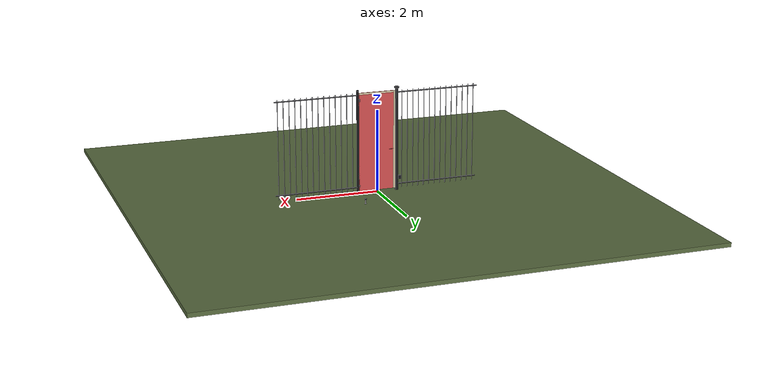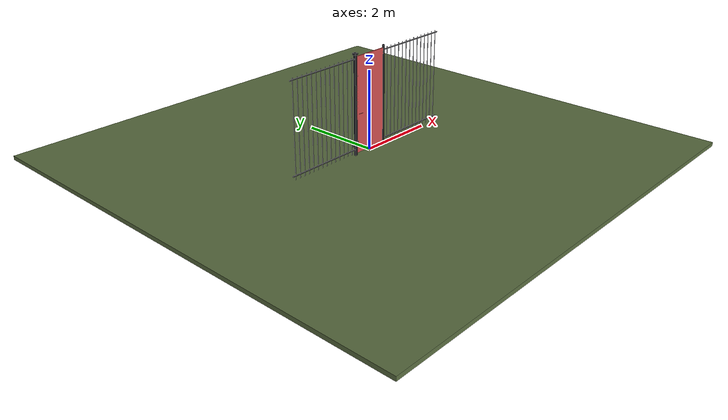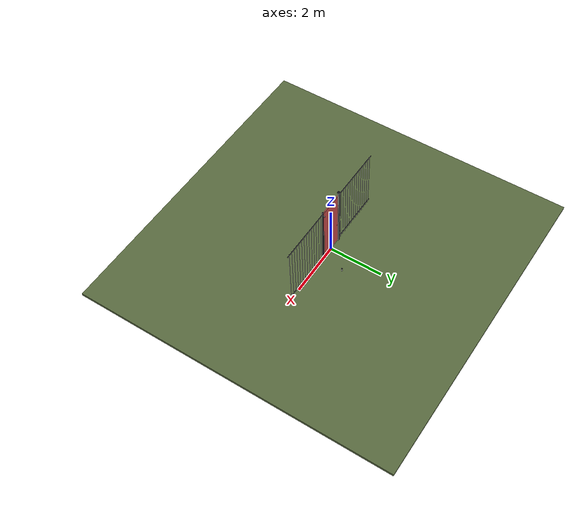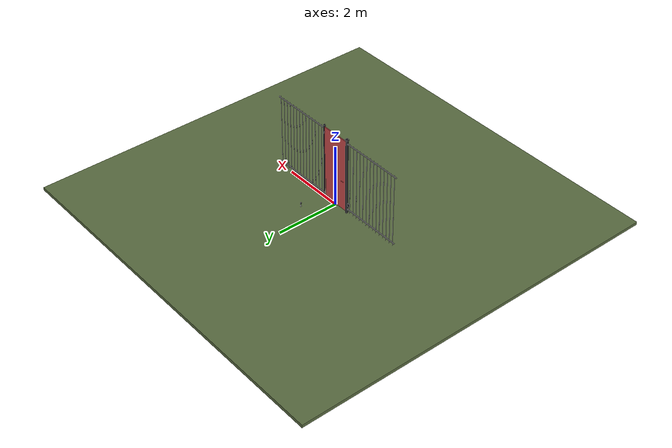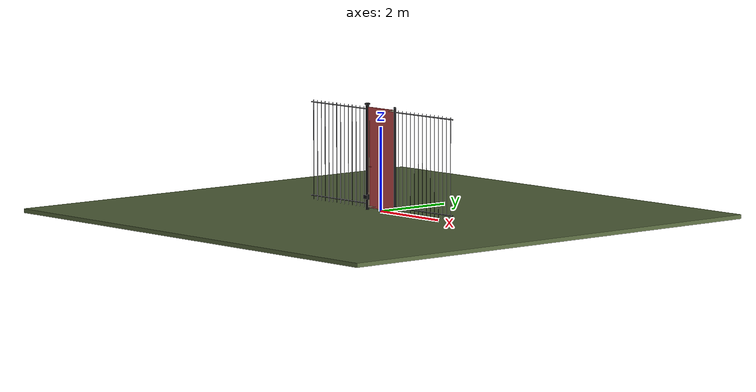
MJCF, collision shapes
<?xml version="1.0" ?>
<mujoco model="db0713_gate_swing_full">
  <compiler angle="radian" meshdir="../../hardware" texturedir="../../textures" autolimits="true" inertiafromgeom="false"/>
  <option timestep="0.002" integrator="implicitfast" cone="elliptic" impratio="10" noslip_iterations="3">
    <flag multiccd="enable"/>
  </option>
  <size memory="16M"/>
  <default>
    <geom condim="4" solref="0.005 1" solimp="0.95 0.99 0.001"/>
    <joint solreflimit="0.005 1" solimplimit="0.95 0.99 0.001"/>
    <tendon solreflimit="0.005 1"/>
    <equality solref="0.002 1"/>
  </default>
  <visual>
    <headlight ambient="0.4 0.4 0.4" diffuse="0.7 0.7 0.7" specular="0.2 0.2 0.2"/>
    <quality shadowsize="4096"/>
    <map znear="0.01" zfar="60"/>
  </visual>
  <asset>
    <mesh name="ring_cc5c941a8a" file="ring_cc5c941a8a.obj"/>
    <mesh name="strap_hinge_78d1bbb966" file="strap_hinge_78d1bbb966.obj"/>
    <material name="mat_floor" rgba="0.35 0.42 0.25 1" specular="0.2" shininess="0.15" reflectance="0"/>
    <material name="mat_wall" rgba="0.78 0.76 0.7 1" specular="0.2" shininess="0.1" reflectance="0"/>
    <material name="mat_leaf" rgba="0.82 0.75 0.62 1" specular="0.23" shininess="0.61" reflectance="0.02"/>
    <material name="mat_hinge" rgba="0.65 0.66 0.68 1" specular="0.74" shininess="0.5" reflectance="0.36"/>
    <material name="mat_op_wrought_iron" rgba="0.08 0.08 0.09 1" specular="0.56" shininess="0.25" reflectance="0.24"/>
    <material name="mat_frame" rgba="0.08 0.08 0.09 1" specular="0.56" shininess="0.25" reflectance="0.24"/>
    <material name="mat_bumper_stop" rgba="0.08 0.08 0.08 1" specular="0.2" shininess="0.1" reflectance="0"/>
    <material name="mat_stop_base" rgba="0.9 0.9 0.92 1" specular="0.8" shininess="0.9" reflectance="0.4"/>
    <texture name="skybox" type="skybox" builtin="gradient" rgb1="0.6 0.7 0.85" rgb2="0.9 0.92 0.95" width="256" height="256"/>
  </asset>
  <worldbody>
    <light name="sun" pos="1.5 -2.5 4" dir="-0.3 0.5 -0.8" directional="true" diffuse="0.8 0.8 0.8" specular="0.3 0.3 0.3" castshadow="true"/>
    <light name="fill" pos="-1.5 2.5 3" dir="0.3 -0.5 -0.7" directional="true" diffuse="0.35 0.35 0.4" castshadow="false"/>
    <camera name="robot_view" pos="0 -2.89375 2.02025" xyaxes="1 0 0 0 0.26963 0.962964" fovy="52"/>
    <camera name="far_view" pos="0 2.89375 2.02025" xyaxes="-1 0 0 0 -0.26963 0.962964" fovy="52"/>
    <camera name="iso" pos="-2.19925 -2.43075 2.48325" xyaxes="0.741536 -0.670913 0 0.242917 0.268487 0.932151" fovy="46"/>
    <camera name="detail_handle" pos="-0.162 -0.8445 1.32" xyaxes="0.97561 0.219512 0 -0.070934 0.315262 0.94635" fovy="38"/>
    <geom name="floor" type="box" size="6 6 0.05" pos="0 0 -0.05" material="mat_floor" group="0" contype="1" conaffinity="1" friction="0.8 0.005 0.0001" density="2400"/>
    <geom name="hinge_pintle_0" type="cylinder" size="0.008 0.02" pos="0.453 0.05 0.174" material="mat_hinge" group="1" contype="0" conaffinity="0" density="7850"/>
    <geom name="hinge_pintle_1" type="cylinder" size="0.008 0.02" pos="0.453 0.05 2.274" material="mat_hinge" group="1" contype="0" conaffinity="0" density="7850"/>
    <geom name="post_hinge" type="cylinder" size="0.03 1.25" pos="0.486 0 1.25" material="mat_frame" group="0" contype="1" conaffinity="1" friction="0.6 0.005 0.0001" density="800"/>
    <geom name="post_hinge_cap" type="sphere" size="0.03" pos="0.486 0 2.5" material="mat_frame" group="1" contype="0" conaffinity="0" density="800"/>
    <geom name="post_latch" type="box" size="0.03 0.03 1.25" pos="-0.486 0 1.25" material="mat_frame" group="0" contype="1" conaffinity="1" friction="0.6 0.005 0.0001" density="800"/>
    <geom name="post_latch_cap" type="box" size="0.045 0.045 0.02" pos="-0.486 0 2.52" material="mat_frame" group="1" contype="0" conaffinity="0" density="800"/>
    <geom name="gate_stop" type="box" size="0.02 0.012 0.06" pos="-0.436 -0.0245 0.3" material="mat_frame" group="0" contype="1" conaffinity="1" friction="0.6 0.005 0.0001" density="800"/>
    <geom name="door_stop_base" type="cylinder" size="0.022 0.003" pos="0.571561 0.805896 0.003" material="mat_stop_base" group="0" contype="1" conaffinity="1" friction="0.6 0.005 0.0001" density="7850"/>
    <geom name="door_stop_post" type="cylinder" size="0.012 0.042" pos="0.571561 0.805896 0.048" material="mat_stop_base" group="0" contype="1" conaffinity="1" friction="0.6 0.005 0.0001" density="7850"/>
    <geom name="door_stop_bumper" type="cylinder" size="0.022 0.02" pos="0.571561 0.805896 0.11" material="mat_bumper_stop" group="0" contype="1" conaffinity="1" friction="0.6 0.005 0.0001" density="1100"/>
    <geom name="fence_bar_l_0" type="cylinder" size="0.008 1.2" pos="-0.616 0 1.25" material="mat_frame" group="0" contype="1" conaffinity="1" friction="0.6 0.005 0.0001" density="7850"/>
    <geom name="fence_bar_l_1" type="cylinder" size="0.008 1.2" pos="-0.756 0 1.25" material="mat_frame" group="0" contype="1" conaffinity="1" friction="0.6 0.005 0.0001" density="7850"/>
    <geom name="fence_bar_l_2" type="cylinder" size="0.008 1.2" pos="-0.896 0 1.25" material="mat_frame" group="0" contype="1" conaffinity="1" friction="0.6 0.005 0.0001" density="7850"/>
    <geom name="fence_bar_l_3" type="cylinder" size="0.008 1.2" pos="-1.036 0 1.25" material="mat_frame" group="0" contype="1" conaffinity="1" friction="0.6 0.005 0.0001" density="7850"/>
    <geom name="fence_bar_l_4" type="cylinder" size="0.008 1.2" pos="-1.176 0 1.25" material="mat_frame" group="0" contype="1" conaffinity="1" friction="0.6 0.005 0.0001" density="7850"/>
    <geom name="fence_bar_l_5" type="cylinder" size="0.008 1.2" pos="-1.316 0 1.25" material="mat_frame" group="0" contype="1" conaffinity="1" friction="0.6 0.005 0.0001" density="7850"/>
    <geom name="fence_bar_l_6" type="cylinder" size="0.008 1.2" pos="-1.456 0 1.25" material="mat_frame" group="0" contype="1" conaffinity="1" friction="0.6 0.005 0.0001" density="7850"/>
    <geom name="fence_bar_l_7" type="cylinder" size="0.008 1.2" pos="-1.596 0 1.25" material="mat_frame" group="0" contype="1" conaffinity="1" friction="0.6 0.005 0.0001" density="7850"/>
    <geom name="fence_bar_l_8" type="cylinder" size="0.008 1.2" pos="-1.736 0 1.25" material="mat_frame" group="0" contype="1" conaffinity="1" friction="0.6 0.005 0.0001" density="7850"/>
    <geom name="fence_bar_l_9" type="cylinder" size="0.008 1.2" pos="-1.876 0 1.25" material="mat_frame" group="0" contype="1" conaffinity="1" friction="0.6 0.005 0.0001" density="7850"/>
    <geom name="fence_bar_l_10" type="cylinder" size="0.008 1.2" pos="-2.016 0 1.25" material="mat_frame" group="0" contype="1" conaffinity="1" friction="0.6 0.005 0.0001" density="7850"/>
    <geom name="fence_bar_l_11" type="cylinder" size="0.008 1.2" pos="-2.156 0 1.25" material="mat_frame" group="0" contype="1" conaffinity="1" friction="0.6 0.005 0.0001" density="7850"/>
    <geom name="fence_bar_l_12" type="cylinder" size="0.008 1.2" pos="-2.296 0 1.25" material="mat_frame" group="0" contype="1" conaffinity="1" friction="0.6 0.005 0.0001" density="7850"/>
    <geom name="fence_bar_l_13" type="cylinder" size="0.008 1.2" pos="-2.436 0 1.25" material="mat_frame" group="0" contype="1" conaffinity="1" friction="0.6 0.005 0.0001" density="7850"/>
    <geom name="fence_rail_l" type="box" size="1 0.012 0.012" pos="-1.516 0 2.4" material="mat_frame" group="0" contype="1" conaffinity="1" friction="0.6 0.005 0.0001" density="7850"/>
    <geom name="fence_rail_b_l" type="box" size="1 0.012 0.012" pos="-1.516 0 0.15" material="mat_frame" group="0" contype="1" conaffinity="1" friction="0.6 0.005 0.0001" density="7850"/>
    <geom name="fence_bar_r_0" type="cylinder" size="0.008 1.2" pos="0.616 0 1.25" material="mat_frame" group="0" contype="1" conaffinity="1" friction="0.6 0.005 0.0001" density="7850"/>
    <geom name="fence_bar_r_1" type="cylinder" size="0.008 1.2" pos="0.756 0 1.25" material="mat_frame" group="0" contype="1" conaffinity="1" friction="0.6 0.005 0.0001" density="7850"/>
    <geom name="fence_bar_r_2" type="cylinder" size="0.008 1.2" pos="0.896 0 1.25" material="mat_frame" group="0" contype="1" conaffinity="1" friction="0.6 0.005 0.0001" density="7850"/>
    <geom name="fence_bar_r_3" type="cylinder" size="0.008 1.2" pos="1.036 0 1.25" material="mat_frame" group="0" contype="1" conaffinity="1" friction="0.6 0.005 0.0001" density="7850"/>
    <geom name="fence_bar_r_4" type="cylinder" size="0.008 1.2" pos="1.176 0 1.25" material="mat_frame" group="0" contype="1" conaffinity="1" friction="0.6 0.005 0.0001" density="7850"/>
    <geom name="fence_bar_r_5" type="cylinder" size="0.008 1.2" pos="1.316 0 1.25" material="mat_frame" group="0" contype="1" conaffinity="1" friction="0.6 0.005 0.0001" density="7850"/>
    <geom name="fence_bar_r_6" type="cylinder" size="0.008 1.2" pos="1.456 0 1.25" material="mat_frame" group="0" contype="1" conaffinity="1" friction="0.6 0.005 0.0001" density="7850"/>
    <geom name="fence_bar_r_7" type="cylinder" size="0.008 1.2" pos="1.596 0 1.25" material="mat_frame" group="0" contype="1" conaffinity="1" friction="0.6 0.005 0.0001" density="7850"/>
    <geom name="fence_bar_r_8" type="cylinder" size="0.008 1.2" pos="1.736 0 1.25" material="mat_frame" group="0" contype="1" conaffinity="1" friction="0.6 0.005 0.0001" density="7850"/>
    <geom name="fence_bar_r_9" type="cylinder" size="0.008 1.2" pos="1.876 0 1.25" material="mat_frame" group="0" contype="1" conaffinity="1" friction="0.6 0.005 0.0001" density="7850"/>
    <geom name="fence_bar_r_10" type="cylinder" size="0.008 1.2" pos="2.016 0 1.25" material="mat_frame" group="0" contype="1" conaffinity="1" friction="0.6 0.005 0.0001" density="7850"/>
    <geom name="fence_bar_r_11" type="cylinder" size="0.008 1.2" pos="2.156 0 1.25" material="mat_frame" group="0" contype="1" conaffinity="1" friction="0.6 0.005 0.0001" density="7850"/>
    <geom name="fence_bar_r_12" type="cylinder" size="0.008 1.2" pos="2.296 0 1.25" material="mat_frame" group="0" contype="1" conaffinity="1" friction="0.6 0.005 0.0001" density="7850"/>
    <geom name="fence_bar_r_13" type="cylinder" size="0.008 1.2" pos="2.436 0 1.25" material="mat_frame" group="0" contype="1" conaffinity="1" friction="0.6 0.005 0.0001" density="7850"/>
    <geom name="fence_rail_r" type="box" size="1 0.012 0.012" pos="1.516 0 2.4" material="mat_frame" group="0" contype="1" conaffinity="1" friction="0.6 0.005 0.0001" density="7850"/>
    <geom name="fence_rail_b_r" type="box" size="1 0.012 0.012" pos="1.516 0 0.15" material="mat_frame" group="0" contype="1" conaffinity="1" friction="0.6 0.005 0.0001" density="7850"/>
    <geom name="hinge_pintle_0_strap_0" type="box" size="0.0064 0.0065 0.016" pos="0.453 0.036 0.174" material="mat_hinge" group="1" contype="0" conaffinity="0" density="7850"/>
    <geom name="hinge_pintle_1_strap_0" type="box" size="0.0064 0.0065 0.016" pos="0.453 0.036 2.274" material="mat_hinge" group="1" contype="0" conaffinity="0" density="7850"/>
    <geom name="gate_stop_strap_0" type="box" size="0.0765 0.01505 0.048" pos="-0.532 -0.01905 0.3" material="mat_frame" group="1" contype="0" conaffinity="0" density="7850"/>
    <site name="approach_point" pos="0 -1.5 0" quat="1 0 0 0" size="0.05" rgba="0.2 0.9 0.2 0.5" group="4"/>
    <site name="goal_point" pos="0 1.5 0" quat="1 0 0 0" size="0.05" rgba="0.2 0.9 0.2 0.5" group="4"/>
    <site name="door_plane_center" pos="0 0 1.21" quat="1 0 0 0" size="0.02" rgba="0.2 0.9 0.2 0.5" group="4"/>
    <body name="leaf" pos="0.456 0 0">
      <inertial pos="-0.446096 0.000646 1.24825" mass="62.396" quat="0.50042 0.498856 0.501155 -0.499566" diaginertia="4.34541779 30.945116251 35.279230333"/>
      <joint name="leaf_hinge" type="hinge" axis="0 0 -1" pos="-0.003 0.05 0" limited="true" range="0 1.745329" damping="0.33438" frictionloss="5.276959" armature="0.02"/>
      <geom name="leaf_slab_col" type="box" size="0.45 0.0125 1.2" pos="-0.453 0 1.25" material="mat_leaf" group="3" contype="1" conaffinity="1" rgba="0.8 0.3 0.3 0.25" friction="0.45 0.005 0.0001" density="1"/>
      <geom name="leaf_rail_b" type="box" size="0.45 0.0125 0.0225" pos="-0.453 0 0.0725" material="mat_leaf" group="1" contype="0" conaffinity="0" density="1"/>
      <geom name="leaf_rail_t" type="box" size="0.45 0.0125 0.0225" pos="-0.453 0 2.4275" material="mat_leaf" group="1" contype="0" conaffinity="0" density="1"/>
      <geom name="leaf_stile_h" type="box" size="0.0225 0.0125 1.2" pos="-0.0255 0 1.25" material="mat_leaf" group="1" contype="0" conaffinity="0" density="1"/>
      <geom name="leaf_stile_l" type="box" size="0.0225 0.0125 1.2" pos="-0.8805 0 1.25" material="mat_leaf" group="1" contype="0" conaffinity="0" density="1"/>
      <geom name="leaf_bar_0" type="cylinder" size="0.0095 1.155" pos="-0.1155 0 1.25" material="mat_leaf" group="1" contype="0" conaffinity="0" density="1"/>
      <geom name="leaf_bar_1" type="cylinder" size="0.0095 1.155" pos="-0.2505 0 1.25" material="mat_leaf" group="1" contype="0" conaffinity="0" density="1"/>
      <geom name="leaf_bar_2" type="cylinder" size="0.0095 1.155" pos="-0.3855 0 1.25" material="mat_leaf" group="1" contype="0" conaffinity="0" density="1"/>
      <geom name="leaf_bar_3" type="cylinder" size="0.0095 1.155" pos="-0.5205 0 1.25" material="mat_leaf" group="1" contype="0" conaffinity="0" density="1"/>
      <geom name="leaf_bar_4" type="cylinder" size="0.0095 1.155" pos="-0.6555 0 1.25" material="mat_leaf" group="1" contype="0" conaffinity="0" density="1"/>
      <geom name="leaf_bar_5" type="cylinder" size="0.0095 1.155" pos="-0.7905 0 1.25" material="mat_leaf" group="1" contype="0" conaffinity="0" density="1"/>
      <geom name="hinge_strap_0" type="mesh" mesh="strap_hinge_78d1bbb966" pos="-0.003 0.0155 0.2" quat="0 0 0 1" material="mat_hinge" group="1" contype="0" conaffinity="0" density="7850"/>
      <geom name="hinge_strap_eye_0" type="cylinder" size="0.011 0.012" pos="-0.003 0.05 0.2" material="mat_hinge" group="1" contype="0" conaffinity="0" density="7850"/>
      <geom name="hinge_strap_neck_0" type="box" size="0.012 0.02125 0.006" pos="-0.003 0.03275 0.2" material="mat_hinge" group="1" contype="0" conaffinity="0" density="7850"/>
      <geom name="hinge_strap_1" type="mesh" mesh="strap_hinge_78d1bbb966" pos="-0.003 0.0155 2.3" quat="0 0 0 1" material="mat_hinge" group="1" contype="0" conaffinity="0" density="7850"/>
      <geom name="hinge_strap_eye_1" type="cylinder" size="0.011 0.012" pos="-0.003 0.05 2.3" material="mat_hinge" group="1" contype="0" conaffinity="0" density="7850"/>
      <geom name="hinge_strap_neck_1" type="box" size="0.012 0.02125 0.006" pos="-0.003 0.03275 2.3" material="mat_hinge" group="1" contype="0" conaffinity="0" density="7850"/>
      <geom name="leaf_ring_pull_n" type="mesh" mesh="ring_cc5c941a8a" pos="-0.798 -0.0125 1.1" quat="0 0 -0.707107 0.707107" material="mat_op_wrought_iron" group="1" contype="0" conaffinity="0" density="3000"/>
      <geom name="leaf_ring_pull_col_n" type="capsule" size="0.008 0.05" pos="-0.798 -0.0445 1.04" quat="0.707107 0 0.707107 0" material="mat_op_wrought_iron" group="3" contype="1" conaffinity="1" rgba="0.8 0.3 0.3 0.25" friction="0.7 0.01 0.0001" density="3000"/>
      <geom name="leaf_ring_pull_p" type="mesh" mesh="ring_cc5c941a8a" pos="-0.798 0.0125 1.1" quat="0 0 0.707107 0.707107" material="mat_op_wrought_iron" group="1" contype="0" conaffinity="0" density="3000"/>
      <geom name="leaf_ring_pull_col_p" type="capsule" size="0.008 0.05" pos="-0.798 0.0445 1.04" quat="0.707107 0 0.707107 0" material="mat_op_wrought_iron" group="3" contype="1" conaffinity="1" rgba="0.8 0.3 0.3 0.25" friction="0.7 0.01 0.0001" density="3000"/>
      <site name="leaf_ring_pull_grip_n" pos="-0.798 -0.0445 1.04" quat="1 0 0 0" size="0.012" rgba="0.2 0.9 0.2 0.5" group="4"/>
      <site name="leaf_ring_pull_grip_p" pos="-0.798 0.0445 1.04" quat="1 0 0 0" size="0.012" rgba="0.2 0.9 0.2 0.5" group="4"/>
      <site name="leaf_edge_mid" pos="-0.903 0 1.2" quat="1 0 0 0" size="0.02" rgba="0.2 0.9 0.2 0.5" group="4"/>
    </body>
  </worldbody>
  <sensor>
    <jointpos name="leaf_hinge_pos" joint="leaf_hinge"/>
    <jointvel name="leaf_hinge_vel" joint="leaf_hinge"/>
  </sensor>
</mujoco>
